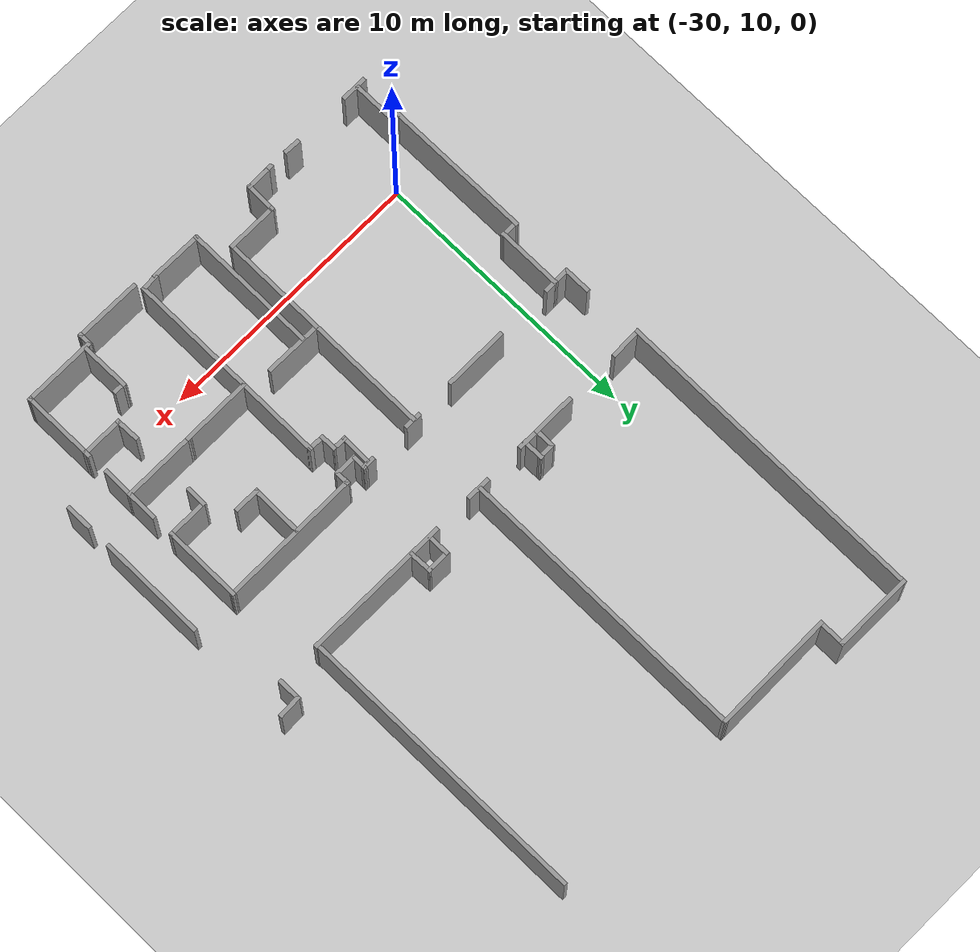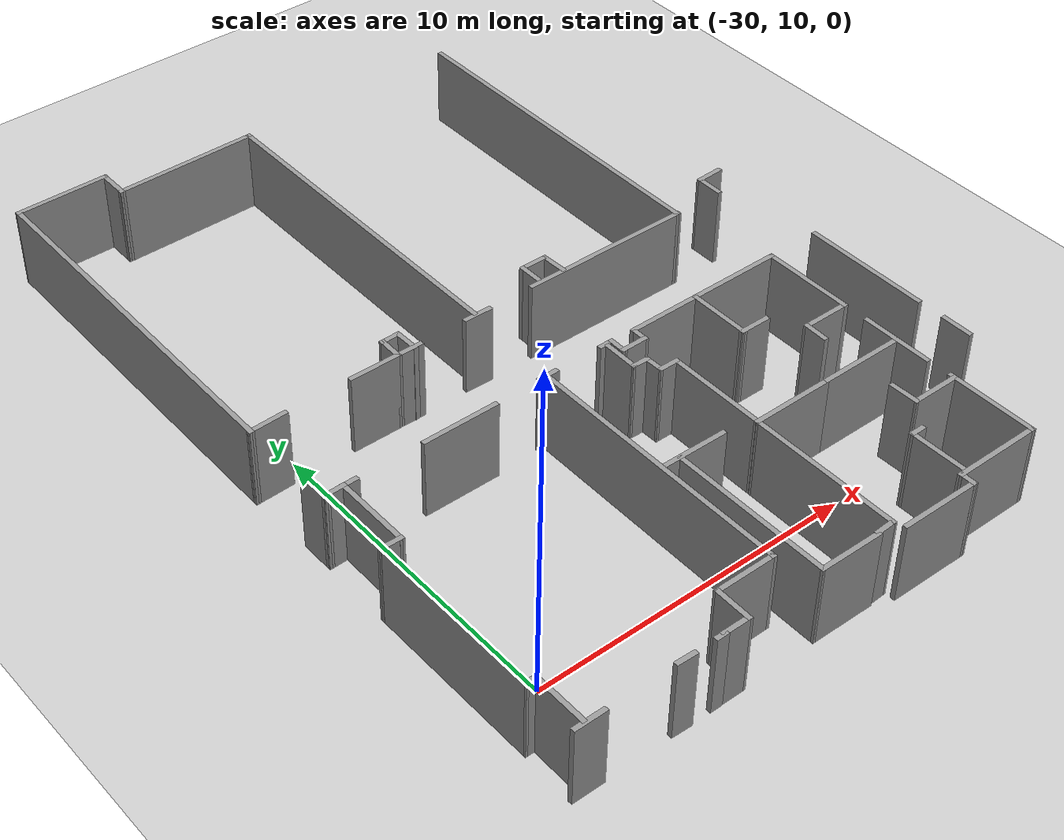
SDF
<sdf version="1.7">
 <world name="default">
  <model name="ground_plane">
   <static>1</static>
   <link name="link">
    <collision name="collision">
     <geometry><plane><normal>0 0 1</normal><size>100 100</size></plane></geometry>
     <surface><friction><ode><mu>100</mu><mu2>50</mu2></ode></friction></surface>
    </collision>
    <visual name="visual">
     <cast_shadows>0</cast_shadows>
     <geometry><plane><normal>0 0 1</normal><size>100 100</size></plane></geometry>
     <material>
      <script><uri>file://media/materials/scripts/gazebo.material</uri><name>Gazebo/Grey</name></script>
     </material>
    </visual>
   </link>
  </model>
  <model name="HopperFloorGround_Full">
   <pose>5.96828 -4.00427 0 0 -0 0</pose>
   <link name="Wall_101">
    <collision name="Wall_101_Collision">
     <geometry><box><size>1 0.15 2.5</size></box></geometry>
     <pose>0 0 1.25 0 -0 0</pose>
    </collision>
    <visual name="Wall_101_Visual">
     <pose>0 0 1.25 0 -0 0</pose>
     <geometry><box><size>1 0.15 2.5</size></box></geometry>
     <material>
      <script><uri>file://media/materials/scripts/gazebo.material</uri><name>Gazebo/Grey</name></script>
      <ambient>1 1 1 1</ambient>
     </material>
     <meta><layer>0</layer></meta>
    </visual>
    <pose>-24.7641 18.4859 0 0 -0 3.14159</pose>
   </link>
   <link name="Wall_102">
    <collision name="Wall_102_Collision">
     <geometry><box><size>1.96918 0.15 2.5</size></box></geometry>
     <pose>0 0 1.25 0 -0 0</pose>
    </collision>
    <visual name="Wall_102_Visual">
     <pose>0 0 1.25 0 -0 0</pose>
     <geometry><box><size>1.96918 0.15 2.5</size></box></geometry>
     <material>
      <script><uri>file://media/materials/scripts/gazebo.material</uri><name>Gazebo/Grey</name></script>
      <ambient>1 1 1 1</ambient>
     </material>
     <meta><layer>0</layer></meta>
    </visual>
    <pose>-25.1838 19.3954 0 0 -0 1.56504</pose>
   </link>
   <link name="Wall_106">
    <collision name="Wall_106_Collision">
     <geometry><box><size>8.39659 0.15 2.5</size></box></geometry>
     <pose>0 0 1.25 0 -0 0</pose>
    </collision>
    <visual name="Wall_106_Visual">
     <pose>0 0 1.25 0 -0 0</pose>
     <geometry><box><size>8.39659 0.15 2.5</size></box></geometry>
     <material>
      <script><uri>file://media/materials/scripts/gazebo.material</uri><name>Gazebo/Grey</name></script>
      <ambient>1 1 1 1</ambient>
     </material>
     <meta><layer>0</layer></meta>
    </visual>
    <pose>-30.3925 16.2262 0 0 -0 1.56836</pose>
   </link>
   <link name="Wall_108">
    <collision name="Wall_108_Collision">
     <geometry><box><size>1.94011 0.15 2.5</size></box></geometry>
     <pose>0 0 1.25 0 -0 0</pose>
    </collision>
    <visual name="Wall_108_Visual">
     <pose>0 0 1.25 0 -0 0</pose>
     <geometry><box><size>1.94011 0.15 2.5</size></box></geometry>
     <material>
      <script><uri>file://media/materials/scripts/gazebo.material</uri><name>Gazebo/Grey</name></script>
      <ambient>1 1 1 1</ambient>
     </material>
     <meta><layer>0</layer></meta>
    </visual>
    <pose>-31.2976 12.103 0 0 -0 3.14159</pose>
   </link>
   <link name="Wall_109">
    <collision name="Wall_109_Collision">
     <geometry><box><size>1.1961 0.15 2.5</size></box></geometry>
     <pose>0 0 1.25 0 -0 0</pose>
    </collision>
    <visual name="Wall_109_Visual">
     <pose>0 0 1.25 0 -0 0</pose>
     <geometry><box><size>1.1961 0.15 2.5</size></box></geometry>
     <material>
      <script><uri>file://media/materials/scripts/gazebo.material</uri><name>Gazebo/Grey</name></script>
      <ambient>1 1 1 1</ambient>
     </material>
     <meta><layer>0</layer></meta>
    </visual>
    <pose>-32.2027 11.58 0 0 -0 -1.59003</pose>
   </link>
   <link name="Wall_110">
    <collision name="Wall_110_Collision">
     <geometry><box><size>0.914316 0.15 2.5</size></box></geometry>
     <pose>0 0 1.25 0 -0 0</pose>
    </collision>
    <visual name="Wall_110_Visual">
     <pose>0 0 1.25 0 -0 0</pose>
     <geometry><box><size>0.914316 0.15 2.5</size></box></geometry>
     <material>
      <script><uri>file://media/materials/scripts/gazebo.material</uri><name>Gazebo/Grey</name></script>
      <ambient>1 1 1 1</ambient>
     </material>
     <meta><layer>0</layer></meta>
    </visual>
    <pose>-32.5949 11.0571 0 0 -0 3.14159</pose>
   </link>
   <link name="Wall_123">
    <collision name="Wall_123_Collision">
     <geometry><box><size>2.25 0.15 2.5</size></box></geometry>
     <pose>0 0 1.25 0 -0 0</pose>
    </collision>
    <visual name="Wall_123_Visual">
     <pose>0 0 1.25 0 -0 0</pose>
     <geometry><box><size>2.25 0.15 2.5</size></box></geometry>
     <material>
      <script><uri>file://media/materials/scripts/gazebo.material</uri><name>Gazebo/Grey</name></script>
      <ambient>1 1 1 1</ambient>
     </material>
     <meta><layer>0</layer></meta>
    </visual>
    <pose>-22.29 15.6966 0 0 -0 -1.5708</pose>
   </link>
   <link name="Wall_125">
    <collision name="Wall_125_Collision">
     <geometry><box><size>2.75 0.15 2.5</size></box></geometry>
     <pose>0 0 1.25 0 -0 0</pose>
    </collision>
    <visual name="Wall_125_Visual">
     <pose>0 0 1.25 0 -0 0</pose>
     <geometry><box><size>2.75 0.15 2.5</size></box></geometry>
     <material>
      <script><uri>file://media/materials/scripts/gazebo.material</uri><name>Gazebo/Grey</name></script>
      <ambient>1 1 1 1</ambient>
     </material>
     <meta><layer>0</layer></meta>
    </visual>
    <pose>-23.59 15.7001 0 0 -0 3.14159</pose>
   </link>
   <link name="Wall_126">
    <collision name="Wall_126_Collision">
     <geometry><box><size>2.64453 0.15 2.5</size></box></geometry>
     <pose>0 0 1.25 0 -0 0</pose>
    </collision>
    <visual name="Wall_126_Visual">
     <pose>0 0 1.25 0 -0 0</pose>
     <geometry><box><size>2.64453 0.15 2.5</size></box></geometry>
     <material>
      <script><uri>file://media/materials/scripts/gazebo.material</uri><name>Gazebo/Grey</name></script>
      <ambient>1 1 1 1</ambient>
     </material>
     <meta><layer>0</layer></meta>
    </visual>
    <pose>-26.1372 15.6944 0 0 -0 -3.13698</pose>
   </link>
   <link name="Wall_127">
    <collision name="Wall_127_Collision">
     <geometry><box><size>3.17459 0.15 2.5</size></box></geometry>
     <pose>0 0 1.25 0 -0 0</pose>
    </collision>
    <visual name="Wall_127_Visual">
     <pose>0 0 1.25 0 -0 0</pose>
     <geometry><box><size>3.17459 0.15 2.5</size></box></geometry>
     <material>
      <script><uri>file://media/materials/scripts/gazebo.material</uri><name>Gazebo/Grey</name></script>
      <ambient>1 1 1 1</ambient>
     </material>
     <meta><layer>0</layer></meta>
    </visual>
    <pose>-27.3787 17.2009 0 0 -0 1.56699</pose>
   </link>
   <link name="Wall_129">
    <collision name="Wall_129_Collision">
     <geometry><box><size>0.692389 0.15 2.5</size></box></geometry>
     <pose>0 0 1.25 0 -0 0</pose>
    </collision>
    <visual name="Wall_129_Visual">
     <pose>0 0 1.25 0 -0 0</pose>
     <geometry><box><size>0.692389 0.15 2.5</size></box></geometry>
     <material>
      <script><uri>file://media/materials/scripts/gazebo.material</uri><name>Gazebo/Grey</name></script>
      <ambient>1 1 1 1</ambient>
     </material>
     <meta><layer>0</layer></meta>
    </visual>
    <pose>-27.6442 18.7138 0 0 -0 3.13898</pose>
   </link>
   <link name="Wall_130">
    <collision name="Wall_130_Collision">
     <geometry><box><size>0.679125 0.15 2.5</size></box></geometry>
     <pose>0 0 1.25 0 -0 0</pose>
    </collision>
    <visual name="Wall_130_Visual">
     <pose>0 0 1.25 0 -0 0</pose>
     <geometry><box><size>0.679125 0.15 2.5</size></box></geometry>
     <material>
      <script><uri>file://media/materials/scripts/gazebo.material</uri><name>Gazebo/Grey</name></script>
      <ambient>1 1 1 1</ambient>
     </material>
     <meta><layer>0</layer></meta>
    </visual>
    <pose>-27.9211 18.979 0 0 -0 1.59253</pose>
   </link>
   <link name="Wall_131">
    <collision name="Wall_131_Collision">
     <geometry><box><size>0.598647 0.15 2.5</size></box></geometry>
     <pose>0 0 1.25 0 -0 0</pose>
    </collision>
    <visual name="Wall_131_Visual">
     <pose>0 0 1.25 0 -0 0</pose>
     <geometry><box><size>0.598647 0.15 2.5</size></box></geometry>
     <material>
      <script><uri>file://media/materials/scripts/gazebo.material</uri><name>Gazebo/Grey</name></script>
      <ambient>1 1 1 1</ambient>
     </material>
     <meta><layer>0</layer></meta>
    </visual>
    <pose>-28.1511 19.2493 0 0 -0 3.11596</pose>
   </link>
   <link name="Wall_132">
    <collision name="Wall_132_Collision">
     <geometry><box><size>1.17356 0.15 2.5</size></box></geometry>
     <pose>0 0 1.25 0 -0 0</pose>
    </collision>
    <visual name="Wall_132_Visual">
     <pose>0 0 1.25 0 -0 0</pose>
     <geometry><box><size>1.17356 0.15 2.5</size></box></geometry>
     <material>
      <script><uri>file://media/materials/scripts/gazebo.material</uri><name>Gazebo/Grey</name></script>
      <ambient>1 1 1 1</ambient>
     </material>
     <meta><layer>0</layer></meta>
    </visual>
    <pose>-28.3696 19.7668 0 0 -0 1.55956</pose>
   </link>
   <link name="Wall_134">
    <collision name="Wall_134_Collision">
     <geometry><box><size>2.16263 0.15 2.5</size></box></geometry>
     <pose>0 0 1.25 0 -0 0</pose>
    </collision>
    <visual name="Wall_134_Visual">
     <pose>0 0 1.25 0 -0 0</pose>
     <geometry><box><size>2.16263 0.15 2.5</size></box></geometry>
     <material>
      <script><uri>file://media/materials/scripts/gazebo.material</uri><name>Gazebo/Grey</name></script>
      <ambient>1 1 1 1</ambient>
     </material>
     <meta><layer>0</layer></meta>
    </visual>
    <pose>-29.3586 15.9545 0 0 -0 3.13016</pose>
   </link>
   <link name="Wall_137">
    <collision name="Wall_137_Collision">
     <geometry><box><size>5 0.15 2.5</size></box></geometry>
     <pose>0 0 1.25 0 -0 0</pose>
    </collision>
    <visual name="Wall_137_Visual">
     <pose>0 0 1.25 0 -0 0</pose>
     <geometry><box><size>5 0.15 2.5</size></box></geometry>
     <material>
      <script><uri>file://media/materials/scripts/gazebo.material</uri><name>Gazebo/Grey</name></script>
      <ambient>1 1 1 1</ambient>
     </material>
     <meta><layer>0</layer></meta>
    </visual>
    <pose>-29.7968 13.4907 0 0 -0 1.5708</pose>
   </link>
   <link name="Wall_139">
    <collision name="Wall_139_Collision">
     <geometry><box><size>4.73481 0.15 2.5</size></box></geometry>
     <pose>0 0 1.25 0 -0 0</pose>
    </collision>
    <visual name="Wall_139_Visual">
     <pose>0 0 1.25 0 -0 0</pose>
     <geometry><box><size>4.73481 0.15 2.5</size></box></geometry>
     <material>
      <script><uri>file://media/materials/scripts/gazebo.material</uri><name>Gazebo/Grey</name></script>
      <ambient>1 1 1 1</ambient>
     </material>
     <meta><layer>0</layer></meta>
    </visual>
    <pose>-27.3873 13.3962 0 0 -0 -1.57203</pose>
   </link>
   <link name="Wall_140">
    <collision name="Wall_140_Collision">
     <geometry><box><size>0.679661 0.15 2.5</size></box></geometry>
     <pose>0 0 1.25 0 -0 0</pose>
    </collision>
    <visual name="Wall_140_Visual">
     <pose>0 0 1.25 0 -0 0</pose>
     <geometry><box><size>0.679661 0.15 2.5</size></box></geometry>
     <material>
      <script><uri>file://media/materials/scripts/gazebo.material</uri><name>Gazebo/Grey</name></script>
      <ambient>1 1 1 1</ambient>
     </material>
     <meta><layer>0</layer></meta>
    </visual>
    <pose>-27.6546 11.0906 0 0 -0 -3.09163</pose>
   </link>
   <link name="Wall_142">
    <collision name="Wall_142_Collision">
     <geometry><box><size>4 0.15 2.5</size></box></geometry>
     <pose>0 0 1.25 0 -0 0</pose>
    </collision>
    <visual name="Wall_142_Visual">
     <pose>0 0 1.25 0 -0 0</pose>
     <geometry><box><size>4 0.15 2.5</size></box></geometry>
     <material>
      <script><uri>file://media/materials/scripts/gazebo.material</uri><name>Gazebo/Grey</name></script>
      <ambient>1 1 1 1</ambient>
     </material>
     <meta><layer>0</layer></meta>
    </visual>
    <pose>-20.6382 18.3734 0 0 -0 1.5708</pose>
   </link>
   <link name="Wall_150">
    <collision name="Wall_150_Collision">
     <geometry><box><size>1 0.15 2.5</size></box></geometry>
     <pose>0 0 1.25 0 -0 0</pose>
    </collision>
    <visual name="Wall_150_Visual">
     <pose>0 0 1.25 0 -0 0</pose>
     <geometry><box><size>1 0.15 2.5</size></box></geometry>
     <material>
      <script><uri>file://media/materials/scripts/gazebo.material</uri><name>Gazebo/Grey</name></script>
      <ambient>1 1 1 1</ambient>
     </material>
     <meta><layer>0</layer></meta>
    </visual>
    <pose>-20.623 15.0869 0 0 -0 -1.5708</pose>
   </link>
   <link name="Wall_289">
    <collision name="Wall_289_Collision">
     <geometry><box><size>1.21738 0.15 2.5</size></box></geometry>
     <pose>0 0 1.25 0 -0 0</pose>
    </collision>
    <visual name="Wall_289_Visual">
     <pose>0 0 1.25 0 -0 0</pose>
     <geometry><box><size>1.21738 0.15 2.5</size></box></geometry>
     <material>
      <script><uri>file://media/materials/scripts/gazebo.material</uri><name>Gazebo/Grey</name></script>
      <ambient>1 1 1 1</ambient>
     </material>
     <meta><layer>0</layer></meta>
    </visual>
    <pose>-36.9815 23.4312 0 0 -0 -3.10827</pose>
   </link>
   <link name="Wall_290">
    <collision name="Wall_290_Collision">
     <geometry><box><size>11.8914 0.15 2.5</size></box></geometry>
     <pose>0 0 1.25 0 -0 0</pose>
    </collision>
    <visual name="Wall_290_Visual">
     <pose>0 0 1.25 0 -0 0</pose>
     <geometry><box><size>11.8914 0.15 2.5</size></box></geometry>
     <material>
      <script><uri>file://media/materials/scripts/gazebo.material</uri><name>Gazebo/Grey</name></script>
      <ambient>1 1 1 1</ambient>
     </material>
     <meta><layer>0</layer></meta>
    </visual>
    <pose>-37.4974 29.2841 0 0 -0 1.56777</pose>
   </link>
   <link name="Wall_291">
    <collision name="Wall_291_Collision">
     <geometry><box><size>2.96077 0.15 2.5</size></box></geometry>
     <pose>0 0 1.25 0 -0 0</pose>
    </collision>
    <visual name="Wall_291_Visual">
     <pose>0 0 1.25 0 -0 0</pose>
     <geometry><box><size>2.96077 0.15 2.5</size></box></geometry>
     <material>
      <script><uri>file://media/materials/scripts/gazebo.material</uri><name>Gazebo/Grey</name></script>
      <ambient>1 1 1 1</ambient>
     </material>
     <meta><layer>0</layer></meta>
    </visual>
    <pose>-36.0742 35.1547 0 0 -0 0</pose>
   </link>
   <link name="Wall_292">
    <collision name="Wall_292_Collision">
     <geometry><box><size>1.07506 0.15 2.5</size></box></geometry>
     <pose>0 0 1.25 0 -0 0</pose>
    </collision>
    <visual name="Wall_292_Visual">
     <pose>0 0 1.25 0 -0 0</pose>
     <geometry><box><size>1.07506 0.15 2.5</size></box></geometry>
     <material>
      <script><uri>file://media/materials/scripts/gazebo.material</uri><name>Gazebo/Grey</name></script>
      <ambient>1 1 1 1</ambient>
     </material>
     <meta><layer>0</layer></meta>
    </visual>
    <pose>-34.6688 34.6921 0 0 -0 -1.5708</pose>
   </link>
   <link name="Wall_293">
    <collision name="Wall_293_Collision">
     <geometry><box><size>4.56242 0.15 2.5</size></box></geometry>
     <pose>0 0 1.25 0 -0 0</pose>
    </collision>
    <visual name="Wall_293_Visual">
     <pose>0 0 1.25 0 -0 0</pose>
     <geometry><box><size>4.56242 0.15 2.5</size></box></geometry>
     <material>
      <script><uri>file://media/materials/scripts/gazebo.material</uri><name>Gazebo/Grey</name></script>
      <ambient>1 1 1 1</ambient>
     </material>
     <meta><layer>0</layer></meta>
    </visual>
    <pose>-32.4629 34.2474 0 0 -0 0.008064</pose>
   </link>
   <link name="Wall_294">
    <collision name="Wall_294_Collision">
     <geometry><box><size>10.895 0.15 2.5</size></box></geometry>
     <pose>0 0 1.25 0 -0 0</pose>
    </collision>
    <visual name="Wall_294_Visual">
     <pose>0 0 1.25 0 -0 0</pose>
     <geometry><box><size>10.895 0.15 2.5</size></box></geometry>
     <material>
      <script><uri>file://media/materials/scripts/gazebo.material</uri><name>Gazebo/Grey</name></script>
      <ambient>1 1 1 1</ambient>
     </material>
     <meta><layer>0</layer></meta>
    </visual>
    <pose>-30.257 28.8927 0 0 -0 -1.5708</pose>
   </link>
   <link name="Wall_296">
    <collision name="Wall_296_Collision">
     <geometry><box><size>1.63469 0.15 2.5</size></box></geometry>
     <pose>0 0 1.25 0 -0 0</pose>
    </collision>
    <visual name="Wall_296_Visual">
     <pose>0 0 1.25 0 -0 0</pose>
     <geometry><box><size>1.63469 0.15 2.5</size></box></geometry>
     <material>
      <script><uri>file://media/materials/scripts/gazebo.material</uri><name>Gazebo/Grey</name></script>
      <ambient>1 1 1 1</ambient>
     </material>
     <meta><layer>0</layer></meta>
    </visual>
    <pose>-33.6172 23.4485 0 0 -0 0</pose>
   </link>
   <link name="Wall_297">
    <collision name="Wall_297_Collision">
     <geometry><box><size>0.818915 0.15 2.5</size></box></geometry>
     <pose>0 0 1.25 0 -0 0</pose>
    </collision>
    <visual name="Wall_297_Visual">
     <pose>0 0 1.25 0 -0 0</pose>
     <geometry><box><size>0.818915 0.15 2.5</size></box></geometry>
     <material>
      <script><uri>file://media/materials/scripts/gazebo.material</uri><name>Gazebo/Grey</name></script>
      <ambient>1 1 1 1</ambient>
     </material>
     <meta><layer>0</layer></meta>
    </visual>
    <pose>-32.8682 23.7829 0 0 -0 1.5508</pose>
   </link>
   <link name="Wall_298">
    <collision name="Wall_298_Collision">
     <geometry><box><size>0.65845 0.15 2.5</size></box></geometry>
     <pose>0 0 1.25 0 -0 0</pose>
    </collision>
    <visual name="Wall_298_Visual">
     <pose>0 0 1.25 0 -0 0</pose>
     <geometry><box><size>0.65845 0.15 2.5</size></box></geometry>
     <material>
      <script><uri>file://media/materials/scripts/gazebo.material</uri><name>Gazebo/Grey</name></script>
      <ambient>1 1 1 1</ambient>
     </material>
     <meta><layer>0</layer></meta>
    </visual>
    <pose>-32.6074 24.124 0 0 -0 0.02631</pose>
   </link>
   <link name="Wall_299">
    <collision name="Wall_299_Collision">
     <geometry><box><size>0.846047 0.15 2.5</size></box></geometry>
     <pose>0 0 1.25 0 -0 0</pose>
    </collision>
    <visual name="Wall_299_Visual">
     <pose>0 0 1.25 0 -0 0</pose>
     <geometry><box><size>0.846047 0.15 2.5</size></box></geometry>
     <material>
      <script><uri>file://media/materials/scripts/gazebo.material</uri><name>Gazebo/Grey</name></script>
      <ambient>1 1 1 1</ambient>
     </material>
     <meta><layer>0</layer></meta>
    </visual>
    <pose>-32.3465 23.7829 0 0 -0 -1.55157</pose>
   </link>
   <link name="Wall_301">
    <collision name="Wall_301_Collision">
     <geometry><box><size>0.885659 0.15 2.5</size></box></geometry>
     <pose>0 0 1.25 0 -0 0</pose>
    </collision>
    <visual name="Wall_301_Visual">
     <pose>0 0 1.25 0 -0 0</pose>
     <geometry><box><size>0.885659 0.15 2.5</size></box></geometry>
     <material>
      <script><uri>file://media/materials/scripts/gazebo.material</uri><name>Gazebo/Grey</name></script>
      <ambient>1 1 1 1</ambient>
     </material>
     <meta><layer>0</layer></meta>
    </visual>
    <pose>-32.5071 23.4485 0 0 -0 0</pose>
   </link>
   <link name="Wall_303">
    <collision name="Wall_303_Collision">
     <geometry><box><size>0.925902 0.15 2.5</size></box></geometry>
     <pose>0 0 1.25 0 -0 0</pose>
    </collision>
    <visual name="Wall_303_Visual">
     <pose>0 0 1.25 0 -0 0</pose>
     <geometry><box><size>0.925902 0.15 2.5</size></box></geometry>
     <material>
      <script><uri>file://media/materials/scripts/gazebo.material</uri><name>Gazebo/Grey</name></script>
      <ambient>1 1 1 1</ambient>
     </material>
     <meta><layer>0</layer></meta>
    </visual>
    <pose>-30.1998 23.4552 0 0 -0 -0.01724</pose>
   </link>
   <link name="Wall_305">
    <collision name="Wall_305_Collision">
     <geometry><box><size>5.47154 0.15 2.5</size></box></geometry>
     <pose>0 0 1.25 0 -0 0</pose>
    </collision>
    <visual name="Wall_305_Visual">
     <pose>0 0 1.25 0 -0 0</pose>
     <geometry><box><size>5.47154 0.15 2.5</size></box></geometry>
     <material>
      <script><uri>file://media/materials/scripts/gazebo.material</uri><name>Gazebo/Grey</name></script>
      <ambient>1 1 1 1</ambient>
     </material>
     <meta><layer>0</layer></meta>
    </visual>
    <pose>-25.641 23.4371 0 0 -0 -0.005814</pose>
   </link>
   <link name="Wall_306">
    <collision name="Wall_306_Collision">
     <geometry><box><size>10.9786 0.15 2.5</size></box></geometry>
     <pose>0 0 1.25 0 -0 0</pose>
    </collision>
    <visual name="Wall_306_Visual">
     <pose>0 0 1.25 0 -0 0</pose>
     <geometry><box><size>10.9786 0.15 2.5</size></box></geometry>
     <material>
      <script><uri>file://media/materials/scripts/gazebo.material</uri><name>Gazebo/Grey</name></script>
      <ambient>1 1 1 1</ambient>
     </material>
     <meta><layer>0</layer></meta>
    </visual>
    <pose>-23.0267 28.8359 0 0 -0 1.57365</pose>
   </link>
   <link name="Wall_308">
    <collision name="Wall_308_Collision">
     <geometry><box><size>0.861589 0.15 2.5</size></box></geometry>
     <pose>0 0 1.25 0 -0 0</pose>
    </collision>
    <visual name="Wall_308_Visual">
     <pose>0 0 1.25 0 -0 0</pose>
     <geometry><box><size>0.861589 0.15 2.5</size></box></geometry>
     <material>
      <script><uri>file://media/materials/scripts/gazebo.material</uri><name>Gazebo/Grey</name></script>
      <ambient>1 1 1 1</ambient>
     </material>
     <meta><layer>0</layer></meta>
    </visual>
    <pose>-27.9923 23.8703 0 0 -0 1.5708</pose>
   </link>
   <link name="Wall_309">
    <collision name="Wall_309_Collision">
     <geometry><box><size>0.923466 0.15 2.5</size></box></geometry>
     <pose>0 0 1.25 0 -0 0</pose>
    </collision>
    <visual name="Wall_309_Visual">
     <pose>0 0 1.25 0 -0 0</pose>
     <geometry><box><size>0.923466 0.15 2.5</size></box></geometry>
     <material>
      <script><uri>file://media/materials/scripts/gazebo.material</uri><name>Gazebo/Grey</name></script>
      <ambient>1 1 1 1</ambient>
     </material>
     <meta><layer>0</layer></meta>
    </visual>
    <pose>-27.6056 24.2261 0 0 -0 0</pose>
   </link>
   <link name="Wall_310">
    <collision name="Wall_310_Collision">
     <geometry><box><size>0.893171 0.15 2.5</size></box></geometry>
     <pose>0 0 1.25 0 -0 0</pose>
    </collision>
    <visual name="Wall_310_Visual">
     <pose>0 0 1.25 0 -0 0</pose>
     <geometry><box><size>0.893171 0.15 2.5</size></box></geometry>
     <material>
      <script><uri>file://media/materials/scripts/gazebo.material</uri><name>Gazebo/Grey</name></script>
      <ambient>1 1 1 1</ambient>
     </material>
     <meta><layer>0</layer></meta>
    </visual>
    <pose>-27.2034 23.8548 0 0 -0 -1.52915</pose>
   </link>
   <link name="Wall_316">
    <collision name="Wall_316_Collision">
     <geometry><box><size>0.892527 0.15 2.5</size></box></geometry>
     <pose>0 0 1.25 0 -0 0</pose>
    </collision>
    <visual name="Wall_316_Visual">
     <pose>0 0 1.25 0 -0 0</pose>
     <geometry><box><size>0.892527 0.15 2.5</size></box></geometry>
     <material>
      <script><uri>file://media/materials/scripts/gazebo.material</uri><name>Gazebo/Grey</name></script>
      <ambient>1 1 1 1</ambient>
     </material>
     <meta><layer>0</layer></meta>
    </visual>
    <pose>-21.3715 23.8239 0 0 -0 1.5708</pose>
   </link>
   <link name="Wall_317">
    <collision name="Wall_317_Collision">
     <geometry><box><size>0.893171 0.15 2.5</size></box></geometry>
     <pose>0 0 1.25 0 -0 0</pose>
    </collision>
    <visual name="Wall_317_Visual">
     <pose>0 0 1.25 0 -0 0</pose>
     <geometry><box><size>0.893171 0.15 2.5</size></box></geometry>
     <material>
      <script><uri>file://media/materials/scripts/gazebo.material</uri><name>Gazebo/Grey</name></script>
      <ambient>1 1 1 1</ambient>
     </material>
     <meta><layer>0</layer></meta>
    </visual>
    <pose>-21.0002 24.2106 0 0 -0 0.041643</pose>
   </link>
   <link name="Wall_58">
    <collision name="Wall_58_Collision">
     <geometry><box><size>1 0.15 2.5</size></box></geometry>
     <pose>0 0 1.25 0 -0 0</pose>
    </collision>
    <visual name="Wall_58_Visual">
     <pose>0 0 1.25 0 -0 0</pose>
     <geometry><box><size>1 0.15 2.5</size></box></geometry>
     <material>
      <script><uri>file://media/materials/scripts/gazebo.material</uri><name>Gazebo/Grey</name></script>
      <ambient>1 1 1 1</ambient>
     </material>
     <meta><layer>0</layer></meta>
    </visual>
    <pose>-36.98 11.0832 0 0 -0 0</pose>
   </link>
   <link name="Wall_593">
    <collision name="Wall_593_Collision">
     <geometry><box><size>0.936537 0.15 2.5</size></box></geometry>
     <pose>0 0 1.25 0 -0 0</pose>
    </collision>
    <visual name="Wall_593_Visual">
     <pose>0 0 1.25 0 -0 0</pose>
     <geometry><box><size>0.936537 0.15 2.5</size></box></geometry>
     <material>
      <script><uri>file://media/materials/scripts/gazebo.material</uri><name>Gazebo/Grey</name></script>
      <ambient>1 1 1 1</ambient>
     </material>
     <meta><layer>0</layer></meta>
    </visual>
    <pose>-23.7133 14.1089 0 0 -0 -1.54449</pose>
   </link>
   <link name="Wall_594">
    <collision name="Wall_594_Collision">
     <geometry><box><size>1.59838 0.15 2.5</size></box></geometry>
     <pose>0 0 1.25 0 -0 0</pose>
    </collision>
    <visual name="Wall_594_Visual">
     <pose>0 0 1.25 0 -0 0</pose>
     <geometry><box><size>1.59838 0.15 2.5</size></box></geometry>
     <material>
      <script><uri>file://media/materials/scripts/gazebo.material</uri><name>Gazebo/Grey</name></script>
      <ambient>1 1 1 1</ambient>
     </material>
     <meta><layer>0</layer></meta>
    </visual>
    <pose>-22.9788 13.7158 0 0 -0 0</pose>
   </link>
   <link name="Wall_596">
    <collision name="Wall_596_Collision">
     <geometry><box><size>0.5 0.15 2.5</size></box></geometry>
     <pose>0 0 1.25 0 -0 0</pose>
    </collision>
    <visual name="Wall_596_Visual">
     <pose>0 0 1.25 0 -0 0</pose>
     <geometry><box><size>0.5 0.15 2.5</size></box></geometry>
     <material>
      <script><uri>file://media/materials/scripts/gazebo.material</uri><name>Gazebo/Grey</name></script>
      <ambient>1 1 1 1</ambient>
     </material>
     <meta><layer>0</layer></meta>
    </visual>
    <pose>-24.5194 12.9295 0 0 -0 3.14159</pose>
   </link>
   <link name="Wall_597">
    <collision name="Wall_597_Collision">
     <geometry><box><size>1.82645 0.15 2.5</size></box></geometry>
     <pose>0 0 1.25 0 -0 0</pose>
    </collision>
    <visual name="Wall_597_Visual">
     <pose>0 0 1.25 0 -0 0</pose>
     <geometry><box><size>1.82645 0.15 2.5</size></box></geometry>
     <material>
      <script><uri>file://media/materials/scripts/gazebo.material</uri><name>Gazebo/Grey</name></script>
      <ambient>1 1 1 1</ambient>
     </material>
     <meta><layer>0</layer></meta>
    </visual>
    <pose>-24.6849 12.0915 0 0 -0 -1.5595</pose>
   </link>
   <link name="Wall_60">
    <collision name="Wall_60_Collision">
     <geometry><box><size>0.640034 0.15 2.5</size></box></geometry>
     <pose>0 0 1.25 0 -0 0</pose>
    </collision>
    <visual name="Wall_60_Visual">
     <pose>0 0 1.25 0 -0 0</pose>
     <geometry><box><size>0.640034 0.15 2.5</size></box></geometry>
     <material>
      <script><uri>file://media/materials/scripts/gazebo.material</uri><name>Gazebo/Grey</name></script>
      <ambient>1 1 1 1</ambient>
     </material>
     <meta><layer>0</layer></meta>
    </visual>
    <pose>-34.1518 11.0569 0 0 -0 -0.035699</pose>
   </link>
   <link name="Wall_62">
    <collision name="Wall_62_Collision">
     <geometry><box><size>0.377371 0.15 2.5</size></box></geometry>
     <pose>0 0 1.25 0 -0 0</pose>
    </collision>
    <visual name="Wall_62_Visual">
     <pose>0 0 1.25 0 -0 0</pose>
     <geometry><box><size>0.377371 0.15 2.5</size></box></geometry>
     <material>
      <script><uri>file://media/materials/scripts/gazebo.material</uri><name>Gazebo/Grey</name></script>
      <ambient>1 1 1 1</ambient>
     </material>
     <meta><layer>0</layer></meta>
    </visual>
    <pose>-33.0762 11.0482 0 0 -0 0</pose>
   </link>
   <link name="Wall_68">
    <collision name="Wall_68_Collision">
     <geometry><box><size>2.00428 0.15 2.5</size></box></geometry>
     <pose>0 0 1.25 0 -0 0</pose>
    </collision>
    <visual name="Wall_68_Visual">
     <pose>0 0 1.25 0 -0 0</pose>
     <geometry><box><size>2.00428 0.15 2.5</size></box></geometry>
     <material>
      <script><uri>file://media/materials/scripts/gazebo.material</uri><name>Gazebo/Grey</name></script>
      <ambient>1 1 1 1</ambient>
     </material>
     <meta><layer>0</layer></meta>
    </visual>
    <pose>-28.8698 11.0569 0 0 -0 -0.009434</pose>
   </link>
   <link name="Wall_72">
    <collision name="Wall_72_Collision">
     <geometry><box><size>2.51142 0.15 2.5</size></box></geometry>
     <pose>0 0 1.25 0 -0 0</pose>
    </collision>
    <visual name="Wall_72_Visual">
     <pose>0 0 1.25 0 -0 0</pose>
     <geometry><box><size>2.51142 0.15 2.5</size></box></geometry>
     <material>
      <script><uri>file://media/materials/scripts/gazebo.material</uri><name>Gazebo/Grey</name></script>
      <ambient>1 1 1 1</ambient>
     </material>
     <meta><layer>0</layer></meta>
    </visual>
    <pose>-26.0452 10.7946 0 0 -0 -0.007407</pose>
   </link>
   <link name="Wall_73">
    <collision name="Wall_73_Collision">
     <geometry><box><size>0.536279 0.15 2.5</size></box></geometry>
     <pose>0 0 1.25 0 -0 0</pose>
    </collision>
    <visual name="Wall_73_Visual">
     <pose>0 0 1.25 0 -0 0</pose>
     <geometry><box><size>0.536279 0.15 2.5</size></box></geometry>
     <material>
      <script><uri>file://media/materials/scripts/gazebo.material</uri><name>Gazebo/Grey</name></script>
      <ambient>1 1 1 1</ambient>
     </material>
     <meta><layer>0</layer></meta>
    </visual>
    <pose>-24.8667 10.9787 0 0 -0 1.58186</pose>
   </link>
   <link name="Wall_74">
    <collision name="Wall_74_Collision">
     <geometry><box><size>2.77351 0.15 2.5</size></box></geometry>
     <pose>0 0 1.25 0 -0 0</pose>
    </collision>
    <visual name="Wall_74_Visual">
     <pose>0 0 1.25 0 -0 0</pose>
     <geometry><box><size>2.77351 0.15 2.5</size></box></geometry>
     <material>
      <script><uri>file://media/materials/scripts/gazebo.material</uri><name>Gazebo/Grey</name></script>
      <ambient>1 1 1 1</ambient>
     </material>
     <meta><layer>0</layer></meta>
    </visual>
    <pose>-23.5571 11.1715 0 0 -0 0</pose>
   </link>
   <link name="Wall_75">
    <collision name="Wall_75_Collision">
     <geometry><box><size>2.80793 0.15 2.5</size></box></geometry>
     <pose>0 0 1.25 0 -0 0</pose>
    </collision>
    <visual name="Wall_75_Visual">
     <pose>0 0 1.25 0 -0 0</pose>
     <geometry><box><size>2.80793 0.15 2.5</size></box></geometry>
     <material>
      <script><uri>file://media/materials/scripts/gazebo.material</uri><name>Gazebo/Grey</name></script>
      <ambient>1 1 1 1</ambient>
     </material>
     <meta><layer>0</layer></meta>
    </visual>
    <pose>-22.2519 12.5003 0 0 -0 1.57577</pose>
   </link>
   <link name="Wall_77">
    <collision name="Wall_77_Collision">
     <geometry><box><size>1.74169 0.15 2.5</size></box></geometry>
     <pose>0 0 1.25 0 -0 0</pose>
    </collision>
    <visual name="Wall_77_Visual">
     <pose>0 0 1.25 0 -0 0</pose>
     <geometry><box><size>1.74169 0.15 2.5</size></box></geometry>
     <material>
      <script><uri>file://media/materials/scripts/gazebo.material</uri><name>Gazebo/Grey</name></script>
      <ambient>1 1 1 1</ambient>
     </material>
     <meta><layer>0</layer></meta>
    </visual>
    <pose>-37.1076 11.9489 0 0 -0 1.5708</pose>
   </link>
   <link name="Wall_78">
    <collision name="Wall_78_Collision">
     <geometry><box><size>0.412351 0.15 2.5</size></box></geometry>
     <pose>0 0 1.25 0 -0 0</pose>
    </collision>
    <visual name="Wall_78_Visual">
     <pose>0 0 1.25 0 -0 0</pose>
     <geometry><box><size>0.412351 0.15 2.5</size></box></geometry>
     <material>
      <script><uri>file://media/materials/scripts/gazebo.material</uri><name>Gazebo/Grey</name></script>
      <ambient>1 1 1 1</ambient>
     </material>
     <meta><layer>0</layer></meta>
    </visual>
    <pose>-37.2388 12.7447 0 0 -0 3.14159</pose>
   </link>
   <link name="Wall_79">
    <collision name="Wall_79_Collision">
     <geometry><box><size>5.48458 0.15 2.5</size></box></geometry>
     <pose>0 0 1.25 0 -0 0</pose>
    </collision>
    <visual name="Wall_79_Visual">
     <pose>0 0 1.25 0 -0 0</pose>
     <geometry><box><size>5.48458 0.15 2.5</size></box></geometry>
     <material>
      <script><uri>file://media/materials/scripts/gazebo.material</uri><name>Gazebo/Grey</name></script>
      <ambient>1 1 1 1</ambient>
     </material>
     <meta><layer>0</layer></meta>
    </visual>
    <pose>-37.3787 15.412 0 0 -0 1.57407</pose>
   </link>
   <link name="Wall_80">
    <collision name="Wall_80_Collision">
     <geometry><box><size>0.692474 0.15 2.5</size></box></geometry>
     <pose>0 0 1.25 0 -0 0</pose>
    </collision>
    <visual name="Wall_80_Visual">
     <pose>0 0 1.25 0 -0 0</pose>
     <geometry><box><size>0.692474 0.15 2.5</size></box></geometry>
     <material>
      <script><uri>file://media/materials/scripts/gazebo.material</uri><name>Gazebo/Grey</name></script>
      <ambient>1 1 1 1</ambient>
     </material>
     <meta><layer>0</layer></meta>
    </visual>
    <pose>-37.1164 18.0704 0 0 -0 -0.032247</pose>
   </link>
   <link name="Wall_82">
    <collision name="Wall_82_Collision">
     <geometry><box><size>2.45869 0.15 2.5</size></box></geometry>
     <pose>0 0 1.25 0 -0 0</pose>
    </collision>
    <visual name="Wall_82_Visual">
     <pose>0 0 1.25 0 -0 0</pose>
     <geometry><box><size>2.45869 0.15 2.5</size></box></geometry>
     <material>
      <script><uri>file://media/materials/scripts/gazebo.material</uri><name>Gazebo/Grey</name></script>
      <ambient>1 1 1 1</ambient>
     </material>
     <meta><layer>0</layer></meta>
    </visual>
    <pose>-36.8453 19.216 0 0 -0 1.5708</pose>
   </link>
   <link name="Wall_83">
    <collision name="Wall_83_Collision">
     <geometry><box><size>0.517708 0.15 2.5</size></box></geometry>
     <pose>0 0 1.25 0 -0 0</pose>
    </collision>
    <visual name="Wall_83_Visual">
     <pose>0 0 1.25 0 -0 0</pose>
     <geometry><box><size>0.517708 0.15 2.5</size></box></geometry>
     <material>
      <script><uri>file://media/materials/scripts/gazebo.material</uri><name>Gazebo/Grey</name></script>
      <ambient>1 1 1 1</ambient>
     </material>
     <meta><layer>0</layer></meta>
    </visual>
    <pose>-36.6616 20.3704 0 0 -0 0</pose>
   </link>
   <link name="Wall_85">
    <collision name="Wall_85_Collision">
     <geometry><box><size>2.40622 0.15 2.5</size></box></geometry>
     <pose>0 0 1.25 0 -0 0</pose>
    </collision>
    <visual name="Wall_85_Visual">
     <pose>0 0 1.25 0 -0 0</pose>
     <geometry><box><size>2.40622 0.15 2.5</size></box></geometry>
     <material>
      <script><uri>file://media/materials/scripts/gazebo.material</uri><name>Gazebo/Grey</name></script>
      <ambient>1 1 1 1</ambient>
     </material>
     <meta><layer>0</layer></meta>
    </visual>
    <pose>-33.2336 20.3529 0 0 -0 0</pose>
   </link>
   <link name="Wall_87">
    <collision name="Wall_87_Collision">
     <geometry><box><size>0.693319 0.15 2.5</size></box></geometry>
     <pose>0 0 1.25 0 -0 0</pose>
    </collision>
    <visual name="Wall_87_Visual">
     <pose>0 0 1.25 0 -0 0</pose>
     <geometry><box><size>0.693319 0.15 2.5</size></box></geometry>
     <material>
      <script><uri>file://media/materials/scripts/gazebo.material</uri><name>Gazebo/Grey</name></script>
      <ambient>1 1 1 1</ambient>
     </material>
     <meta><layer>0</layer></meta>
    </visual>
    <pose>-37.1164 20.3616 0 0 -0 -3.10935</pose>
   </link>
   <link name="Wall_88">
    <collision name="Wall_88_Collision">
     <geometry><box><size>1.07697 0.15 2.5</size></box></geometry>
     <pose>0 0 1.25 0 -0 0</pose>
    </collision>
    <visual name="Wall_88_Visual">
     <pose>0 0 1.25 0 -0 0</pose>
     <geometry><box><size>1.07697 0.15 2.5</size></box></geometry>
     <material>
      <script><uri>file://media/materials/scripts/gazebo.material</uri><name>Gazebo/Grey</name></script>
      <ambient>1 1 1 1</ambient>
     </material>
     <meta><layer>0</layer></meta>
    </visual>
    <pose>-37.3875 20.8164 0 0 -0 1.5708</pose>
   </link>
   <link name="Wall_90">
    <collision name="Wall_90_Collision">
     <geometry><box><size>0.656287 0.15 2.5</size></box></geometry>
     <pose>0 0 1.25 0 -0 0</pose>
    </collision>
    <visual name="Wall_90_Visual">
     <pose>0 0 1.25 0 -0 0</pose>
     <geometry><box><size>0.656287 0.15 2.5</size></box></geometry>
     <material>
      <script><uri>file://media/materials/scripts/gazebo.material</uri><name>Gazebo/Grey</name></script>
      <ambient>1 1 1 1</ambient>
     </material>
     <meta><layer>0</layer></meta>
    </visual>
    <pose>-30.3344 20.3796 0 0 -0 0</pose>
   </link>
   <link name="Wall_92">
    <collision name="Wall_92_Collision">
     <geometry><box><size>0.518444 0.15 2.5</size></box></geometry>
     <pose>0 0 1.25 0 -0 0</pose>
    </collision>
    <visual name="Wall_92_Visual">
     <pose>0 0 1.25 0 -0 0</pose>
     <geometry><box><size>0.518444 0.15 2.5</size></box></geometry>
     <material>
      <script><uri>file://media/materials/scripts/gazebo.material</uri><name>Gazebo/Grey</name></script>
      <ambient>1 1 1 1</ambient>
     </material>
     <meta><layer>0</layer></meta>
    </visual>
    <pose>-28.3454 20.3664 0 0 -0 0</pose>
   </link>
   <link name="Wall_93">
    <collision name="Wall_93_Collision">
     <geometry><box><size>0.616883 0.15 2.5</size></box></geometry>
     <pose>0 0 1.25 0 -0 0</pose>
    </collision>
    <visual name="Wall_93_Visual">
     <pose>0 0 1.25 0 -0 0</pose>
     <geometry><box><size>0.616883 0.15 2.5</size></box></geometry>
     <material>
      <script><uri>file://media/materials/scripts/gazebo.material</uri><name>Gazebo/Grey</name></script>
      <ambient>1 1 1 1</ambient>
     </material>
     <meta><layer>0</layer></meta>
    </visual>
    <pose>-28.1646 20.133 0 0 -0 -1.58488</pose>
   </link>
   <link name="Wall_94">
    <collision name="Wall_94_Collision">
     <geometry><box><size>0.906172 0.15 2.5</size></box></geometry>
     <pose>0 0 1.25 0 -0 0</pose>
    </collision>
    <visual name="Wall_94_Visual">
     <pose>0 0 1.25 0 -0 0</pose>
     <geometry><box><size>0.906172 0.15 2.5</size></box></geometry>
     <material>
      <script><uri>file://media/materials/scripts/gazebo.material</uri><name>Gazebo/Grey</name></script>
      <ambient>1 1 1 1</ambient>
     </material>
     <meta><layer>0</layer></meta>
    </visual>
    <pose>-27.7898 19.9029 0 0 -0 0.008695</pose>
   </link>
   <link name="Wall_95">
    <collision name="Wall_95_Collision">
     <geometry><box><size>0.577436 0.15 2.5</size></box></geometry>
     <pose>0 0 1.25 0 -0 0</pose>
    </collision>
    <visual name="Wall_95_Visual">
     <pose>0 0 1.25 0 -0 0</pose>
     <geometry><box><size>0.577436 0.15 2.5</size></box></geometry>
     <material>
      <script><uri>file://media/materials/scripts/gazebo.material</uri><name>Gazebo/Grey</name></script>
      <ambient>1 1 1 1</ambient>
     </material>
     <meta><layer>0</layer></meta>
    </visual>
    <pose>-27.4117 20.1198 0 0 -0 1.5708</pose>
   </link>
   <link name="Wall_96">
    <collision name="Wall_96_Collision">
     <geometry><box><size>5.25159 0.15 2.5</size></box></geometry>
     <pose>0 0 1.25 0 -0 0</pose>
    </collision>
    <visual name="Wall_96_Visual">
     <pose>0 0 1.25 0 -0 0</pose>
     <geometry><box><size>5.25159 0.15 2.5</size></box></geometry>
     <material>
      <script><uri>file://media/materials/scripts/gazebo.material</uri><name>Gazebo/Grey</name></script>
      <ambient>1 1 1 1</ambient>
     </material>
     <meta><layer>0</layer></meta>
    </visual>
    <pose>-24.861 20.3367 0 0 -0 0.001239</pose>
   </link>
   <link name="Wall_97">
    <collision name="Wall_97_Collision">
     <geometry><box><size>2.91349 0.15 2.5</size></box></geometry>
     <pose>0 0 1.25 0 -0 0</pose>
    </collision>
    <visual name="Wall_97_Visual">
     <pose>0 0 1.25 0 -0 0</pose>
     <geometry><box><size>2.91349 0.15 2.5</size></box></geometry>
     <material>
      <script><uri>file://media/materials/scripts/gazebo.material</uri><name>Gazebo/Grey</name></script>
      <ambient>1 1 1 1</ambient>
     </material>
     <meta><layer>0</layer></meta>
    </visual>
    <pose>-22.3102 18.9581 0 0 -0 -1.5708</pose>
   </link>
   <link name="Wall_98">
    <collision name="Wall_98_Collision">
     <geometry><box><size>1.54964 0.15 2.5</size></box></geometry>
     <pose>0 0 1.25 0 -0 0</pose>
    </collision>
    <visual name="Wall_98_Visual">
     <pose>0 0 1.25 0 -0 0</pose>
     <geometry><box><size>1.54964 0.15 2.5</size></box></geometry>
     <material>
      <script><uri>file://media/materials/scripts/gazebo.material</uri><name>Gazebo/Grey</name></script>
      <ambient>1 1 1 1</ambient>
     </material>
     <meta><layer>0</layer></meta>
    </visual>
    <pose>-23.0098 17.5764 0 0 -0 3.14159</pose>
   </link>
   <link name="Wall_99">
    <collision name="Wall_99_Collision">
     <geometry><box><size>0.797369 0.15 2.5</size></box></geometry>
     <pose>0 0 1.25 0 -0 0</pose>
    </collision>
    <visual name="Wall_99_Visual">
     <pose>0 0 1.25 0 -0 0</pose>
     <geometry><box><size>0.797369 0.15 2.5</size></box></geometry>
     <material>
      <script><uri>file://media/materials/scripts/gazebo.material</uri><name>Gazebo/Grey</name></script>
      <ambient>1 1 1 1</ambient>
     </material>
     <meta><layer>0</layer></meta>
    </visual>
    <pose>-23.7182 17.2528 0 0 -0 -1.59782</pose>
   </link>
   <static>1</static>
  </model>
 </world>
</sdf>
